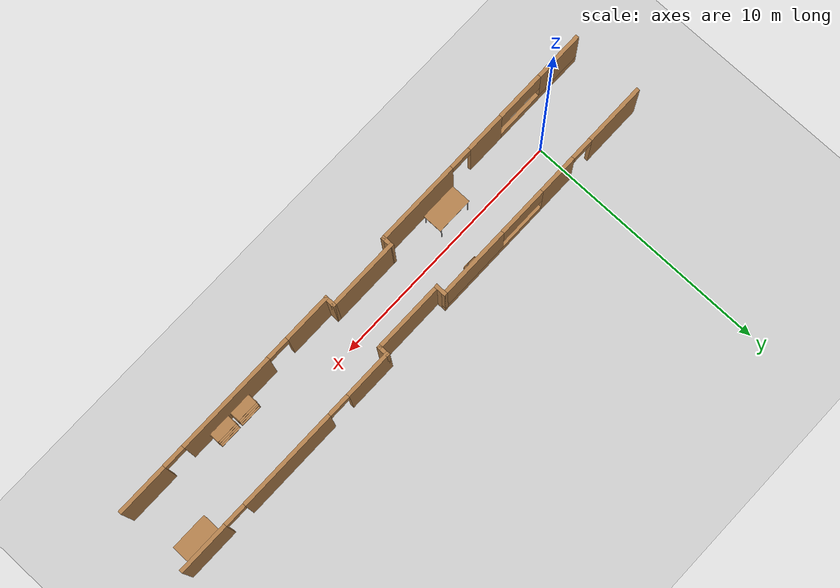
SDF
<sdf version="1.6">
 <world name="default">
  <light name="sun" type="directional">
   <pose>0 0 10 0 -0 0</pose>
   <diffuse>0.8 0.8 0.8 1</diffuse>
   <specular>0.2 0.2 0.2 1</specular>
   <attenuation>
    <range>1000</range>
    <constant>0.9</constant>
    <linear>0.01</linear>
    <quadratic>0.001</quadratic>
   </attenuation>
   <direction>-0.5 0.1 -0.9</direction>
  </light>
  <model name="ground_plane">
   <static>1</static>
   <link name="link">
    <collision name="collision">
     <geometry><plane><normal>0 0 1</normal><size>100 100</size></plane></geometry>
     <surface>
      <contact><collide_bitmask>65535</collide_bitmask></contact>
      <friction><ode><mu>100</mu><mu2>50</mu2></ode></friction>
     </surface>
    </collision>
    <visual name="visual">
     <cast_shadows>0</cast_shadows>
     <geometry><plane><normal>0 0 1</normal><size>100 100</size></plane></geometry>
     <material>
      <script><uri>file://media/materials/scripts/gazebo.material</uri><name>Gazebo/Grey</name></script>
     </material>
    </visual>
   </link>
  </model>
  <gravity>0 0 -9.8</gravity>
  <magnetic_field>6e-06 2.3e-05 -4.2e-05</magnetic_field>
  <atmosphere type="adiabatic"/>
  <physics name="default_physics" default="0" type="ode">
   <max_step_size>0.001</max_step_size>
   <real_time_factor>1</real_time_factor>
   <real_time_update_rate>1000</real_time_update_rate>
  </physics>
  <scene><ambient>0.4 0.4 0.4 1</ambient><background>0.7 0.7 0.7 1</background><shadows>1</shadows></scene>
  <spherical_coordinates>
   <surface_model>EARTH_WGS84</surface_model>
   <latitude_deg>0</latitude_deg>
   <longitude_deg>0</longitude_deg>
   <elevation>0</elevation>
   <heading_deg>0</heading_deg>
  </spherical_coordinates>
  <model name="Corridor_features">
   <pose>8 0 0 0 -0 0</pose>
   <link name="Wall_40">
    <pose>-6.35 1.425 0 0 -0 0</pose>
    <visual name="Wall_40_Visual_0">
     <pose>-3.75 0 1.25 0 -0 0</pose>
     <geometry><box><size>2.49999 0.15 2.5</size></box></geometry>
     <material>
      <script><uri>file://media/materials/scripts/gazebo.material</uri><name>Gazebo/Wood</name></script>
      <ambient>1 1 1 1</ambient>
     </material>
     <meta><layer>0</layer></meta>
    </visual>
    <collision name="Wall_40_Collision_0">
     <geometry><box><size>2.49999 0.15 2.5</size></box></geometry>
     <pose>-3.75 0 1.25 0 -0 0</pose>
    </collision>
    <visual name="Wall_40_Visual_1">
     <pose>-0.800007 0 1.25 0 -0 0</pose>
     <geometry><box><size>1.6 0.15 2.5</size></box></geometry>
     <material>
      <script><uri>file://media/materials/scripts/gazebo.material</uri><name>Gazebo/Wood</name></script>
      <ambient>1 1 1 1</ambient>
     </material>
     <meta><layer>0</layer></meta>
    </visual>
    <collision name="Wall_40_Collision_1">
     <geometry><box><size>1.6 0.15 2.5</size></box></geometry>
     <pose>-0.800007 0 1.25 0 -0 0</pose>
    </collision>
    <visual name="Wall_40_Visual_2">
     <pose>2.5 0 0.25 0 -0 0</pose>
     <geometry><box><size>5.00001 0.15 0.5</size></box></geometry>
     <material>
      <script><uri>file://media/materials/scripts/gazebo.material</uri><name>Gazebo/Wood</name></script>
      <ambient>1 1 1 1</ambient>
     </material>
     <meta><layer>0</layer></meta>
    </visual>
    <collision name="Wall_40_Collision_2">
     <geometry><box><size>5.00001 0.15 0.5</size></box></geometry>
     <pose>2.5 0 0.25 0 -0 0</pose>
    </collision>
    <visual name="Wall_40_Visual_3">
     <pose>3.5 0 1.5 0 -0 0</pose>
     <geometry><box><size>3.00001 0.15 2</size></box></geometry>
     <material>
      <script><uri>file://media/materials/scripts/gazebo.material</uri><name>Gazebo/Wood</name></script>
      <ambient>1 1 1 1</ambient>
     </material>
     <meta><layer>0</layer></meta>
    </visual>
    <collision name="Wall_40_Collision_3">
     <geometry><box><size>3.00001 0.15 2</size></box></geometry>
     <pose>3.5 0 1.5 0 -0 0</pose>
    </collision>
    <visual name="Wall_40_Visual_4">
     <pose>0.999993 0 1.9 0 -0 0</pose>
     <geometry><box><size>2 0.15 1.2</size></box></geometry>
     <material>
      <script><uri>file://media/materials/scripts/gazebo.material</uri><name>Gazebo/Wood</name></script>
      <ambient>1 1 1 1</ambient>
     </material>
     <meta><layer>0</layer></meta>
    </visual>
    <collision name="Wall_40_Collision_4">
     <geometry><box><size>2 0.15 1.2</size></box></geometry>
     <pose>0.999993 0 1.9 0 -0 0</pose>
    </collision>
    <visual name="Wall_40_Visual_5">
     <pose>-2.05001 0 2.25 0 -0 0</pose>
     <geometry><box><size>0.9 0.15 0.5</size></box></geometry>
     <material>
      <script><uri>file://media/materials/scripts/gazebo.material</uri><name>Gazebo/Wood</name></script>
      <ambient>1 1 1 1</ambient>
     </material>
     <meta><layer>0</layer></meta>
    </visual>
    <collision name="Wall_40_Collision_5">
     <geometry><box><size>0.9 0.15 0.5</size></box></geometry>
     <pose>-2.05001 0 2.25 0 -0 0</pose>
    </collision>
   </link>
   <link name="Wall_42">
    <pose>-6.35 -1.425 0 0 -0 3.14159</pose>
    <visual name="Wall_42_Visual_0">
     <pose>-3.25 0 1.25 0 -0 0</pose>
     <geometry><box><size>3.50001 0.15 2.5</size></box></geometry>
     <material>
      <script><uri>file://media/materials/scripts/gazebo.material</uri><name>Gazebo/Wood</name></script>
      <ambient>1 1 1 1</ambient>
     </material>
     <meta><layer>0</layer></meta>
    </visual>
    <collision name="Wall_42_Collision_0">
     <geometry><box><size>3.50001 0.15 2.5</size></box></geometry>
     <pose>-3.25 0 1.25 0 -0 0</pose>
    </collision>
    <visual name="Wall_42_Visual_1">
     <pose>0.200007 0 1.25 0 -0 0</pose>
     <geometry><box><size>1.6 0.15 2.5</size></box></geometry>
     <material>
      <script><uri>file://media/materials/scripts/gazebo.material</uri><name>Gazebo/Wood</name></script>
      <ambient>1 1 1 1</ambient>
     </material>
     <meta><layer>0</layer></meta>
    </visual>
    <collision name="Wall_42_Collision_1">
     <geometry><box><size>1.6 0.15 2.5</size></box></geometry>
     <pose>0.200007 0 1.25 0 -0 0</pose>
    </collision>
    <visual name="Wall_42_Visual_2">
     <pose>3 0 0.25 0 -0 0</pose>
     <geometry><box><size>3.99999 0.15 0.5</size></box></geometry>
     <material>
      <script><uri>file://media/materials/scripts/gazebo.material</uri><name>Gazebo/Wood</name></script>
      <ambient>1 1 1 1</ambient>
     </material>
     <meta><layer>0</layer></meta>
    </visual>
    <collision name="Wall_42_Collision_2">
     <geometry><box><size>3.99999 0.15 0.5</size></box></geometry>
     <pose>3 0 0.25 0 -0 0</pose>
    </collision>
    <visual name="Wall_42_Visual_3">
     <pose>4 0 1.5 0 -0 0</pose>
     <geometry><box><size>1.99999 0.15 2</size></box></geometry>
     <material>
      <script><uri>file://media/materials/scripts/gazebo.material</uri><name>Gazebo/Wood</name></script>
      <ambient>1 1 1 1</ambient>
     </material>
     <meta><layer>0</layer></meta>
    </visual>
    <collision name="Wall_42_Collision_3">
     <geometry><box><size>1.99999 0.15 2</size></box></geometry>
     <pose>4 0 1.5 0 -0 0</pose>
    </collision>
    <visual name="Wall_42_Visual_4">
     <pose>2.00001 0 1.9 0 -0 0</pose>
     <geometry><box><size>2 0.15 1.2</size></box></geometry>
     <material>
      <script><uri>file://media/materials/scripts/gazebo.material</uri><name>Gazebo/Wood</name></script>
      <ambient>1 1 1 1</ambient>
     </material>
     <meta><layer>0</layer></meta>
    </visual>
    <collision name="Wall_42_Collision_4">
     <geometry><box><size>2 0.15 1.2</size></box></geometry>
     <pose>2.00001 0 1.9 0 -0 0</pose>
    </collision>
    <visual name="Wall_42_Visual_5">
     <pose>-1.04999 0 2.25 0 -0 0</pose>
     <geometry><box><size>0.9 0.15 0.5</size></box></geometry>
     <material>
      <script><uri>file://media/materials/scripts/gazebo.material</uri><name>Gazebo/Wood</name></script>
      <ambient>1 1 1 1</ambient>
     </material>
     <meta><layer>0</layer></meta>
    </visual>
    <collision name="Wall_42_Collision_5">
     <geometry><box><size>0.9 0.15 0.5</size></box></geometry>
     <pose>-1.04999 0 2.25 0 -0 0</pose>
    </collision>
   </link>
   <link name="Wall_44">
    <collision name="Wall_44_Collision">
     <geometry><box><size>0.5 0.15 2.5</size></box></geometry>
     <pose>0 0 1.25 0 -0 0</pose>
    </collision>
    <visual name="Wall_44_Visual">
     <pose>0 0 1.25 0 -0 0</pose>
     <geometry><box><size>0.5 0.15 2.5</size></box></geometry>
     <material>
      <script><uri>file://media/materials/scripts/gazebo.material</uri><name>Gazebo/Wood</name></script>
      <ambient>1 1 1 1</ambient>
     </material>
     <meta><layer>0</layer></meta>
    </visual>
    <pose>-1.425 1.25 0 0 -0 -1.5708</pose>
   </link>
   <link name="Wall_45">
    <collision name="Wall_45_Collision">
     <geometry><box><size>3 0.15 2.5</size></box></geometry>
     <pose>0 0 1.25 0 -0 0</pose>
    </collision>
    <visual name="Wall_45_Visual">
     <pose>0 0 1.25 0 -0 0</pose>
     <geometry><box><size>3 0.15 2.5</size></box></geometry>
     <material>
      <script><uri>file://media/materials/scripts/gazebo.material</uri><name>Gazebo/Wood</name></script>
      <ambient>1 1 1 1</ambient>
     </material>
     <meta><layer>0</layer></meta>
    </visual>
    <pose>0 1.075 0 0 -0 0</pose>
   </link>
   <link name="Wall_46">
    <collision name="Wall_46_Collision">
     <geometry><box><size>0.5 0.15 2.5</size></box></geometry>
     <pose>0 0 1.25 0 -0 0</pose>
    </collision>
    <visual name="Wall_46_Visual">
     <pose>0 0 1.25 0 -0 0</pose>
     <geometry><box><size>0.5 0.15 2.5</size></box></geometry>
     <material>
      <script><uri>file://media/materials/scripts/gazebo.material</uri><name>Gazebo/Wood</name></script>
      <ambient>1 1 1 1</ambient>
     </material>
     <meta><layer>0</layer></meta>
    </visual>
    <pose>1.425 1.25 0 0 -0 1.5708</pose>
   </link>
   <link name="Wall_47">
    <pose>6.35 1.425 0 0 -0 0</pose>
    <visual name="Wall_47_Visual_0">
     <pose>-4 0 1.25 0 -0 0</pose>
     <geometry><box><size>1.99999 0.15 2.5</size></box></geometry>
     <material>
      <script><uri>file://media/materials/scripts/gazebo.material</uri><name>Gazebo/Wood</name></script>
      <ambient>1 1 1 1</ambient>
     </material>
     <meta><layer>0</layer></meta>
    </visual>
    <collision name="Wall_47_Collision_0">
     <geometry><box><size>1.99999 0.15 2.5</size></box></geometry>
     <pose>-4 0 1.25 0 -0 0</pose>
    </collision>
    <visual name="Wall_47_Visual_1">
     <pose>-0.050007 0 1.25 0 -0 0</pose>
     <geometry><box><size>4.1 0.15 2.5</size></box></geometry>
     <material>
      <script><uri>file://media/materials/scripts/gazebo.material</uri><name>Gazebo/Wood</name></script>
      <ambient>1 1 1 1</ambient>
     </material>
     <meta><layer>0</layer></meta>
    </visual>
    <collision name="Wall_47_Collision_1">
     <geometry><box><size>4.1 0.15 2.5</size></box></geometry>
     <pose>-0.050007 0 1.25 0 -0 0</pose>
    </collision>
    <visual name="Wall_47_Visual_2">
     <pose>3.95 0 1.25 0 -0 0</pose>
     <geometry><box><size>2.10001 0.15 2.5</size></box></geometry>
     <material>
      <script><uri>file://media/materials/scripts/gazebo.material</uri><name>Gazebo/Wood</name></script>
      <ambient>1 1 1 1</ambient>
     </material>
     <meta><layer>0</layer></meta>
    </visual>
    <collision name="Wall_47_Collision_2">
     <geometry><box><size>2.10001 0.15 2.5</size></box></geometry>
     <pose>3.95 0 1.25 0 -0 0</pose>
    </collision>
    <visual name="Wall_47_Visual_3">
     <pose>-2.55001 0 2.25 0 -0 0</pose>
     <geometry><box><size>0.9 0.15 0.5</size></box></geometry>
     <material>
      <script><uri>file://media/materials/scripts/gazebo.material</uri><name>Gazebo/Wood</name></script>
      <ambient>1 1 1 1</ambient>
     </material>
     <meta><layer>0</layer></meta>
    </visual>
    <collision name="Wall_47_Collision_3">
     <geometry><box><size>0.9 0.15 0.5</size></box></geometry>
     <pose>-2.55001 0 2.25 0 -0 0</pose>
    </collision>
    <visual name="Wall_47_Visual_4">
     <pose>2.44999 0 2.25 0 -0 0</pose>
     <geometry><box><size>0.9 0.15 0.5</size></box></geometry>
     <material>
      <script><uri>file://media/materials/scripts/gazebo.material</uri><name>Gazebo/Wood</name></script>
      <ambient>1 1 1 1</ambient>
     </material>
     <meta><layer>0</layer></meta>
    </visual>
    <collision name="Wall_47_Collision_4">
     <geometry><box><size>0.9 0.15 0.5</size></box></geometry>
     <pose>2.44999 0 2.25 0 -0 0</pose>
    </collision>
   </link>
   <link name="Wall_49">
    <collision name="Wall_49_Collision">
     <geometry><box><size>0.5 0.15 2.5</size></box></geometry>
     <pose>0 0 1.25 0 -0 0</pose>
    </collision>
    <visual name="Wall_49_Visual">
     <pose>0 0 1.25 0 -0 0</pose>
     <geometry><box><size>0.5 0.15 2.5</size></box></geometry>
     <material>
      <script><uri>file://media/materials/scripts/gazebo.material</uri><name>Gazebo/Wood</name></script>
      <ambient>1 1 1 1</ambient>
     </material>
     <meta><layer>0</layer></meta>
    </visual>
    <pose>-1.425 -1.25 0 0 -0 1.5708</pose>
   </link>
   <link name="Wall_50">
    <collision name="Wall_50_Collision">
     <geometry><box><size>3 0.15 2.5</size></box></geometry>
     <pose>0 0 1.25 0 -0 0</pose>
    </collision>
    <visual name="Wall_50_Visual">
     <pose>0 0 1.25 0 -0 0</pose>
     <geometry><box><size>3 0.15 2.5</size></box></geometry>
     <material>
      <script><uri>file://media/materials/scripts/gazebo.material</uri><name>Gazebo/Wood</name></script>
      <ambient>1 1 1 1</ambient>
     </material>
     <meta><layer>0</layer></meta>
    </visual>
    <pose>0 -1.075 0 0 -0 0</pose>
   </link>
   <link name="Wall_51">
    <collision name="Wall_51_Collision">
     <geometry><box><size>0.5 0.15 2.5</size></box></geometry>
     <pose>0 0 1.25 0 -0 0</pose>
    </collision>
    <visual name="Wall_51_Visual">
     <pose>0 0 1.25 0 -0 0</pose>
     <geometry><box><size>0.5 0.15 2.5</size></box></geometry>
     <material>
      <script><uri>file://media/materials/scripts/gazebo.material</uri><name>Gazebo/Wood</name></script>
      <ambient>1 1 1 1</ambient>
     </material>
     <meta><layer>0</layer></meta>
    </visual>
    <pose>1.425 -1.25 0 0 -0 -1.5708</pose>
   </link>
   <link name="Wall_52">
    <pose>6.35 -1.425 0 0 -0 0</pose>
    <visual name="Wall_52_Visual_0">
     <pose>-4 0 1.25 0 -0 0</pose>
     <geometry><box><size>1.99999 0.15 2.5</size></box></geometry>
     <material>
      <script><uri>file://media/materials/scripts/gazebo.material</uri><name>Gazebo/Wood</name></script>
      <ambient>1 1 1 1</ambient>
     </material>
     <meta><layer>0</layer></meta>
    </visual>
    <collision name="Wall_52_Collision_0">
     <geometry><box><size>1.99999 0.15 2.5</size></box></geometry>
     <pose>-4 0 1.25 0 -0 0</pose>
    </collision>
    <visual name="Wall_52_Visual_1">
     <pose>-0.050007 0 1.25 0 -0 0</pose>
     <geometry><box><size>4.1 0.15 2.5</size></box></geometry>
     <material>
      <script><uri>file://media/materials/scripts/gazebo.material</uri><name>Gazebo/Wood</name></script>
      <ambient>1 1 1 1</ambient>
     </material>
     <meta><layer>0</layer></meta>
    </visual>
    <collision name="Wall_52_Collision_1">
     <geometry><box><size>4.1 0.15 2.5</size></box></geometry>
     <pose>-0.050007 0 1.25 0 -0 0</pose>
    </collision>
    <visual name="Wall_52_Visual_2">
     <pose>3.95 0 1.25 0 -0 0</pose>
     <geometry><box><size>2.10001 0.15 2.5</size></box></geometry>
     <material>
      <script><uri>file://media/materials/scripts/gazebo.material</uri><name>Gazebo/Wood</name></script>
      <ambient>1 1 1 1</ambient>
     </material>
     <meta><layer>0</layer></meta>
    </visual>
    <collision name="Wall_52_Collision_2">
     <geometry><box><size>2.10001 0.15 2.5</size></box></geometry>
     <pose>3.95 0 1.25 0 -0 0</pose>
    </collision>
    <visual name="Wall_52_Visual_3">
     <pose>-2.55001 0 2.25 0 -0 0</pose>
     <geometry><box><size>0.9 0.15 0.5</size></box></geometry>
     <material>
      <script><uri>file://media/materials/scripts/gazebo.material</uri><name>Gazebo/Wood</name></script>
      <ambient>1 1 1 1</ambient>
     </material>
     <meta><layer>0</layer></meta>
    </visual>
    <collision name="Wall_52_Collision_3">
     <geometry><box><size>0.9 0.15 0.5</size></box></geometry>
     <pose>-2.55001 0 2.25 0 -0 0</pose>
    </collision>
    <visual name="Wall_52_Visual_4">
     <pose>2.44999 0 2.25 0 -0 0</pose>
     <geometry><box><size>0.9 0.15 0.5</size></box></geometry>
     <material>
      <script><uri>file://media/materials/scripts/gazebo.material</uri><name>Gazebo/Wood</name></script>
      <ambient>1 1 1 1</ambient>
     </material>
     <meta><layer>0</layer></meta>
    </visual>
    <collision name="Wall_52_Collision_4">
     <geometry><box><size>0.9 0.15 0.5</size></box></geometry>
     <pose>2.44999 0 2.25 0 -0 0</pose>
    </collision>
   </link>
   <static>1</static>
  </model>
  <model name="bookshelf">
   <static>1</static>
   <link name="link">
    <inertial><mass>1</mass></inertial>
    <collision name="back">
     <pose>0 0.005 0.6 0 -0 0</pose>
     <geometry><box><size>0.9 0.01 1.2</size></box></geometry>
    </collision>
    <visual name="visual1">
     <pose>0 0.005 0.6 0 -0 0</pose>
     <geometry><box><size>0.9 0.01 1.2</size></box></geometry>
     <material>
      <script><uri>file://media/materials/scripts/gazebo.material</uri><name>Gazebo/Wood</name></script>
     </material>
    </visual>
    <collision name="left_side">
     <pose>0.45 -0.195 0.6 0 -0 0</pose>
     <geometry><box><size>0.02 0.4 1.2</size></box></geometry>
    </collision>
    <visual name="visual2">
     <pose>0.45 -0.195 0.6 0 -0 0</pose>
     <geometry><box><size>0.02 0.4 1.2</size></box></geometry>
     <material>
      <script><uri>file://media/materials/scripts/gazebo.material</uri><name>Gazebo/Wood</name></script>
     </material>
    </visual>
    <collision name="right_side">
     <pose>-0.45 -0.195 0.6 0 -0 0</pose>
     <geometry><box><size>0.02 0.4 1.2</size></box></geometry>
    </collision>
    <visual name="visual3">
     <pose>-0.45 -0.195 0.6 0 -0 0</pose>
     <geometry><box><size>0.02 0.4 1.2</size></box></geometry>
     <material>
      <script><uri>file://media/materials/scripts/gazebo.material</uri><name>Gazebo/Wood</name></script>
     </material>
    </visual>
    <collision name="bottom">
     <pose>0 -0.195 0.03 0 -0 0</pose>
     <geometry><box><size>0.88 0.4 0.06</size></box></geometry>
    </collision>
    <visual name="visual4">
     <pose>0 -0.195 0.03 0 -0 0</pose>
     <geometry><box><size>0.88 0.4 0.06</size></box></geometry>
     <material>
      <script><uri>file://media/materials/scripts/gazebo.material</uri><name>Gazebo/Wood</name></script>
     </material>
    </visual>
    <collision name="top">
     <pose>0 -0.195 1.19 0 -0 0</pose>
     <geometry><box><size>0.88 0.4 0.02</size></box></geometry>
    </collision>
    <visual name="visual5">
     <pose>0 -0.195 1.19 0 -0 0</pose>
     <geometry><box><size>0.88 0.4 0.02</size></box></geometry>
     <material>
      <script><uri>file://media/materials/scripts/gazebo.material</uri><name>Gazebo/Wood</name></script>
     </material>
    </visual>
    <collision name="low_shelf">
     <pose>0 -0.195 0.43 0 -0 0</pose>
     <geometry><box><size>0.88 0.4 0.02</size></box></geometry>
    </collision>
    <visual name="visual6">
     <pose>0 -0.195 0.43 0 -0 0</pose>
     <geometry><box><size>0.88 0.4 0.02</size></box></geometry>
     <material>
      <script><uri>file://media/materials/scripts/gazebo.material</uri><name>Gazebo/Wood</name></script>
     </material>
    </visual>
    <collision name="high_shelf">
     <pose>0 -0.195 0.8 0 -0 0</pose>
     <geometry><box><size>0.88 0.4 0.02</size></box></geometry>
    </collision>
    <visual name="visual7">
     <pose>0 -0.195 0.8 0 -0 0</pose>
     <geometry><box><size>0.88 0.4 0.02</size></box></geometry>
     <material>
      <script><uri>file://media/materials/scripts/gazebo.material</uri><name>Gazebo/Wood</name></script>
     </material>
    </visual>
   </link>
   <pose>15 -1.3 0 0 -0 3.14159</pose>
  </model>
  <model name="bookshelf_0">
   <static>1</static>
   <link name="link">
    <inertial><mass>1</mass></inertial>
    <collision name="back">
     <pose>0 0.005 0.6 0 -0 0</pose>
     <geometry><box><size>0.9 0.01 1.2</size></box></geometry>
    </collision>
    <visual name="visual1">
     <pose>0 0.005 0.6 0 -0 0</pose>
     <geometry><box><size>0.9 0.01 1.2</size></box></geometry>
     <material>
      <script><uri>file://media/materials/scripts/gazebo.material</uri><name>Gazebo/Wood</name></script>
     </material>
    </visual>
    <collision name="left_side">
     <pose>0.45 -0.195 0.6 0 -0 0</pose>
     <geometry><box><size>0.02 0.4 1.2</size></box></geometry>
    </collision>
    <visual name="visual2">
     <pose>0.45 -0.195 0.6 0 -0 0</pose>
     <geometry><box><size>0.02 0.4 1.2</size></box></geometry>
     <material>
      <script><uri>file://media/materials/scripts/gazebo.material</uri><name>Gazebo/Wood</name></script>
     </material>
    </visual>
    <collision name="right_side">
     <pose>-0.45 -0.195 0.6 0 -0 0</pose>
     <geometry><box><size>0.02 0.4 1.2</size></box></geometry>
    </collision>
    <visual name="visual3">
     <pose>-0.45 -0.195 0.6 0 -0 0</pose>
     <geometry><box><size>0.02 0.4 1.2</size></box></geometry>
     <material>
      <script><uri>file://media/materials/scripts/gazebo.material</uri><name>Gazebo/Wood</name></script>
     </material>
    </visual>
    <collision name="bottom">
     <pose>0 -0.195 0.03 0 -0 0</pose>
     <geometry><box><size>0.88 0.4 0.06</size></box></geometry>
    </collision>
    <visual name="visual4">
     <pose>0 -0.195 0.03 0 -0 0</pose>
     <geometry><box><size>0.88 0.4 0.06</size></box></geometry>
     <material>
      <script><uri>file://media/materials/scripts/gazebo.material</uri><name>Gazebo/Wood</name></script>
     </material>
    </visual>
    <collision name="top">
     <pose>0 -0.195 1.19 0 -0 0</pose>
     <geometry><box><size>0.88 0.4 0.02</size></box></geometry>
    </collision>
    <visual name="visual5">
     <pose>0 -0.195 1.19 0 -0 0</pose>
     <geometry><box><size>0.88 0.4 0.02</size></box></geometry>
     <material>
      <script><uri>file://media/materials/scripts/gazebo.material</uri><name>Gazebo/Wood</name></script>
     </material>
    </visual>
    <collision name="low_shelf">
     <pose>0 -0.195 0.43 0 -0 0</pose>
     <geometry><box><size>0.88 0.4 0.02</size></box></geometry>
    </collision>
    <visual name="visual6">
     <pose>0 -0.195 0.43 0 -0 0</pose>
     <geometry><box><size>0.88 0.4 0.02</size></box></geometry>
     <material>
      <script><uri>file://media/materials/scripts/gazebo.material</uri><name>Gazebo/Wood</name></script>
     </material>
    </visual>
    <collision name="high_shelf">
     <pose>0 -0.195 0.8 0 -0 0</pose>
     <geometry><box><size>0.88 0.4 0.02</size></box></geometry>
    </collision>
    <visual name="visual7">
     <pose>0 -0.195 0.8 0 -0 0</pose>
     <geometry><box><size>0.88 0.4 0.02</size></box></geometry>
     <material>
      <script><uri>file://media/materials/scripts/gazebo.material</uri><name>Gazebo/Wood</name></script>
     </material>
    </visual>
   </link>
   <pose>14 -1.3 0 0 -0 3.14159</pose>
  </model>
  <model name="table">
   <static>1</static>
   <link name="link">
    <collision name="surface">
     <pose>0 0 1 0 -0 0</pose>
     <geometry><box><size>1.5 0.8 0.03</size></box></geometry>
     <surface><friction><ode><mu>0.6</mu><mu2>0.6</mu2></ode></friction></surface>
    </collision>
    <visual name="visual1">
     <pose>0 0 1 0 -0 0</pose>
     <geometry><box><size>1.5 0.8 0.03</size></box></geometry>
     <material>
      <script><uri>file://media/materials/scripts/gazebo.material</uri><name>Gazebo/Wood</name></script>
     </material>
    </visual>
    <collision name="front_left_leg">
     <pose>0.68 0.38 0.5 0 -0 0</pose>
     <geometry><cylinder><radius>0.02</radius><length>1</length></cylinder></geometry>
    </collision>
    <visual name="front_left_leg">
     <pose>0.68 0.38 0.5 0 -0 0</pose>
     <geometry><cylinder><radius>0.02</radius><length>1</length></cylinder></geometry>
     <material>
      <script><uri>file://media/materials/scripts/gazebo.material</uri><name>Gazebo/Grey</name></script>
     </material>
    </visual>
    <collision name="front_right_leg">
     <pose>0.68 -0.38 0.5 0 -0 0</pose>
     <geometry><cylinder><radius>0.02</radius><length>1</length></cylinder></geometry>
    </collision>
    <visual name="front_right_leg">
     <pose>0.68 -0.38 0.5 0 -0 0</pose>
     <geometry><cylinder><radius>0.02</radius><length>1</length></cylinder></geometry>
     <material>
      <script><uri>file://media/materials/scripts/gazebo.material</uri><name>Gazebo/Grey</name></script>
     </material>
    </visual>
    <collision name="back_right_leg">
     <pose>-0.68 -0.38 0.5 0 -0 0</pose>
     <geometry><cylinder><radius>0.02</radius><length>1</length></cylinder></geometry>
    </collision>
    <visual name="back_right_leg">
     <pose>-0.68 -0.38 0.5 0 -0 0</pose>
     <geometry><cylinder><radius>0.02</radius><length>1</length></cylinder></geometry>
     <material>
      <script><uri>file://media/materials/scripts/gazebo.material</uri><name>Gazebo/Grey</name></script>
     </material>
    </visual>
    <collision name="back_left_leg">
     <pose>-0.68 0.38 0.5 0 -0 0</pose>
     <geometry><cylinder><radius>0.02</radius><length>1</length></cylinder></geometry>
    </collision>
    <visual name="back_left_leg">
     <pose>-0.68 0.38 0.5 0 -0 0</pose>
     <geometry><cylinder><radius>0.02</radius><length>1</length></cylinder></geometry>
     <material>
      <script><uri>file://media/materials/scripts/gazebo.material</uri><name>Gazebo/Grey</name></script>
     </material>
    </visual>
   </link>
   <pose>4.07634 -0.816307 0 0 -0 0</pose>
  </model>
  <model name="table_0">
   <static>1</static>
   <link name="link">
    <collision name="surface">
     <pose>0 0 1 0 -0 0</pose>
     <geometry><box><size>1.5 0.8 0.03</size></box></geometry>
     <surface><friction><ode><mu>0.6</mu><mu2>0.6</mu2></ode></friction></surface>
    </collision>
    <visual name="visual1">
     <pose>0 0 1 0 -0 0</pose>
     <geometry><box><size>1.5 0.8 0.03</size></box></geometry>
     <material>
      <script><uri>file://media/materials/scripts/gazebo.material</uri><name>Gazebo/Wood</name></script>
     </material>
    </visual>
    <collision name="front_left_leg">
     <pose>0.68 0.38 0.5 0 -0 0</pose>
     <geometry><cylinder><radius>0.02</radius><length>1</length></cylinder></geometry>
    </collision>
    <visual name="front_left_leg">
     <pose>0.68 0.38 0.5 0 -0 0</pose>
     <geometry><cylinder><radius>0.02</radius><length>1</length></cylinder></geometry>
     <material>
      <script><uri>file://media/materials/scripts/gazebo.material</uri><name>Gazebo/Grey</name></script>
     </material>
    </visual>
    <collision name="front_right_leg">
     <pose>0.68 -0.38 0.5 0 -0 0</pose>
     <geometry><cylinder><radius>0.02</radius><length>1</length></cylinder></geometry>
    </collision>
    <visual name="front_right_leg">
     <pose>0.68 -0.38 0.5 0 -0 0</pose>
     <geometry><cylinder><radius>0.02</radius><length>1</length></cylinder></geometry>
     <material>
      <script><uri>file://media/materials/scripts/gazebo.material</uri><name>Gazebo/Grey</name></script>
     </material>
    </visual>
    <collision name="back_right_leg">
     <pose>-0.68 -0.38 0.5 0 -0 0</pose>
     <geometry><cylinder><radius>0.02</radius><length>1</length></cylinder></geometry>
    </collision>
    <visual name="back_right_leg">
     <pose>-0.68 -0.38 0.5 0 -0 0</pose>
     <geometry><cylinder><radius>0.02</radius><length>1</length></cylinder></geometry>
     <material>
      <script><uri>file://media/materials/scripts/gazebo.material</uri><name>Gazebo/Grey</name></script>
     </material>
    </visual>
    <collision name="back_left_leg">
     <pose>-0.68 0.38 0.5 0 -0 0</pose>
     <geometry><cylinder><radius>0.02</radius><length>1</length></cylinder></geometry>
    </collision>
    <visual name="back_left_leg">
     <pose>-0.68 0.38 0.5 0 -0 0</pose>
     <geometry><cylinder><radius>0.02</radius><length>1</length></cylinder></geometry>
     <material>
      <script><uri>file://media/materials/scripts/gazebo.material</uri><name>Gazebo/Grey</name></script>
     </material>
    </visual>
   </link>
   <pose>18.294 0.8332 0 0 -0 0</pose>
  </model>
  <model name="wooden_case_metal_peg">
   <link name="wooden_case::base">
    <pose>0 0 0.024 0 -0 0</pose>
    <inertial>
     <pose>-0.022184 0 0.171592 0 -0 0</pose>
     <mass>3.96264</mass>
     <inertia>
      <ixx>0.213536</ixx>
      <ixy>0</ixy>
      <ixz>0.000779377</ixz>
      <iyy>0.0708943</iyy>
      <iyz>0</iyz>
      <izz>0.154604</izz>
     </inertia>
    </inertial>
    <collision name="collision_back">
     <pose>-0.053975 0 0.1778 0 -0 0</pose>
     <geometry><box><size>0.01905 0.5461 0.3175</size></box></geometry>
     <surface>
      <contact>
       <poissons_ratio>0.347</poissons_ratio>
       <elastic_modulus>8.8e+09</elastic_modulus>
       <ode><kp>100000</kp><kd>100</kd><max_vel>100</max_vel><min_depth>0.001</min_depth></ode>
      </contact>
      <friction>
       <torsional>
        <coefficient>1</coefficient>
        <use_patch_radius>0</use_patch_radius>
        <surface_radius>0.01</surface_radius>
       </torsional>
      </friction>
     </surface>
    </collision>
    <visual name="visual_back">
     <pose>-0.053975 0 0.1778 0 -0 0</pose>
     <geometry><box><size>0.01905 0.5461 0.3175</size></box></geometry>
     <material>
      <script><uri>file://media/materials/scripts/gazebo.material</uri><name>Gazebo/Wood</name></script>
     </material>
    </visual>
    <collision name="collision_bottom">
     <pose>0 0 0.009525 0 -0 0</pose>
     <geometry><box><size>0.127 0.5842 0.01905</size></box></geometry>
     <surface>
      <contact>
       <poissons_ratio>0.347</poissons_ratio>
       <elastic_modulus>8.8e+09</elastic_modulus>
       <ode><kp>100000</kp><kd>100</kd><max_vel>100</max_vel><min_depth>0.001</min_depth></ode>
      </contact>
      <friction>
       <torsional>
        <coefficient>1</coefficient>
        <use_patch_radius>0</use_patch_radius>
        <surface_radius>0.01</surface_radius>
       </torsional>
      </friction>
     </surface>
    </collision>
    <visual name="visual_bottom">
     <pose>0 0 0.009525 0 -0 0</pose>
     <geometry><box><size>0.127 0.5842 0.01905</size></box></geometry>
     <material>
      <script><uri>file://media/materials/scripts/gazebo.material</uri><name>Gazebo/Wood</name></script>
     </material>
    </visual>
    <collision name="collision_top">
     <pose>0 0 0.346075 0 -0 0</pose>
     <geometry><box><size>0.127 0.5842 0.01905</size></box></geometry>
     <surface>
      <contact>
       <poissons_ratio>0.347</poissons_ratio>
       <elastic_modulus>8.8e+09</elastic_modulus>
       <ode><kp>100000</kp><kd>100</kd><max_vel>100</max_vel><min_depth>0.001</min_depth></ode>
      </contact>
      <friction>
       <torsional>
        <coefficient>1</coefficient>
        <use_patch_radius>0</use_patch_radius>
        <surface_radius>0.01</surface_radius>
       </torsional>
      </friction>
     </surface>
    </collision>
    <visual name="visual_top">
     <pose>0 0 0.346075 0 -0 0</pose>
     <geometry><box><size>0.127 0.5842 0.01905</size></box></geometry>
     <material>
      <script><uri>file://media/materials/scripts/gazebo.material</uri><name>Gazebo/Wood</name></script>
     </material>
    </visual>
    <collision name="collision_left">
     <pose>0 -0.282575 0.1778 0 -0 0</pose>
     <geometry><box><size>0.127 0.01905 0.3175</size></box></geometry>
     <surface>
      <contact>
       <poissons_ratio>0.347</poissons_ratio>
       <elastic_modulus>8.8e+09</elastic_modulus>
       <ode><kp>100000</kp><kd>100</kd><max_vel>100</max_vel><min_depth>0.001</min_depth></ode>
      </contact>
      <friction>
       <torsional>
        <coefficient>1</coefficient>
        <use_patch_radius>0</use_patch_radius>
        <surface_radius>0.01</surface_radius>
       </torsional>
      </friction>
     </surface>
    </collision>
    <visual name="visual_left">
     <pose>0 -0.282575 0.1778 0 -0 0</pose>
     <geometry><box><size>0.127 0.01905 0.3175</size></box></geometry>
     <material>
      <script><uri>file://media/materials/scripts/gazebo.material</uri><name>Gazebo/Wood</name></script>
     </material>
    </visual>
    <collision name="collision_right">
     <pose>0 0.282575 0.1778 0 -0 0</pose>
     <geometry><box><size>0.127 0.01905 0.3175</size></box></geometry>
     <surface>
      <contact>
       <poissons_ratio>0.347</poissons_ratio>
       <elastic_modulus>8.8e+09</elastic_modulus>
       <ode><kp>100000</kp><kd>100</kd><max_vel>100</max_vel><min_depth>0.001</min_depth></ode>
      </contact>
      <friction>
       <torsional>
        <coefficient>1</coefficient>
        <use_patch_radius>0</use_patch_radius>
        <surface_radius>0.01</surface_radius>
       </torsional>
      </friction>
     </surface>
    </collision>
    <visual name="visual_right">
     <pose>0 0.282575 0.1778 0 -0 0</pose>
     <geometry><box><size>0.127 0.01905 0.3175</size></box></geometry>
     <material>
      <script><uri>file://media/materials/scripts/gazebo.material</uri><name>Gazebo/Wood</name></script>
     </material>
    </visual>
    <collision name="collision_block_left">
     <pose>0.0095 -0.2151 -0.012 0 -0 0</pose>
     <geometry><box><size>0.108 0.05 0.024</size></box></geometry>
     <surface>
      <contact>
       <poissons_ratio>0.347</poissons_ratio>
       <elastic_modulus>8.8e+09</elastic_modulus>
       <ode><kp>100000</kp><kd>100</kd><max_vel>100</max_vel><min_depth>0.001</min_depth></ode>
      </contact>
      <friction>
       <torsional>
        <coefficient>1</coefficient>
        <use_patch_radius>0</use_patch_radius>
        <surface_radius>0.01</surface_radius>
       </torsional>
      </friction>
     </surface>
    </collision>
    <visual name="visual_block_left">
     <pose>0.0095 -0.2151 -0.012 0 -0 0</pose>
     <geometry><box><size>0.108 0.05 0.024</size></box></geometry>
     <material>
      <script><uri>file://media/materials/scripts/gazebo.material</uri><name>Gazebo/Wood</name></script>
     </material>
    </visual>
    <collision name="collision_block_right">
     <pose>0.0095 0.2151 -0.012 0 -0 0</pose>
     <geometry><box><size>0.108 0.05 0.024</size></box></geometry>
     <surface>
      <contact>
       <poissons_ratio>0.347</poissons_ratio>
       <elastic_modulus>8.8e+09</elastic_modulus>
       <ode><kp>100000</kp><kd>100</kd><max_vel>100</max_vel><min_depth>0.001</min_depth></ode>
      </contact>
      <friction>
       <torsional>
        <coefficient>1</coefficient>
        <use_patch_radius>0</use_patch_radius>
        <surface_radius>0.01</surface_radius>
       </torsional>
      </friction>
     </surface>
    </collision>
    <visual name="visual_block_right">
     <pose>0.0095 0.2151 -0.012 0 -0 0</pose>
     <geometry><box><size>0.108 0.05 0.024</size></box></geometry>
     <material>
      <script><uri>file://media/materials/scripts/gazebo.material</uri><name>Gazebo/Wood</name></script>
     </material>
    </visual>
   </link>
   <link name="wooden_case::lid">
    <pose>0.243775 0 0.009525 0 -0 0</pose>
    <inertial>
     <mass>1.97874</mass>
     <inertia>
      <ixx>0.0563367</ixx>
      <ixy>0</ixy>
      <ixz>0</ixz>
      <iyy>0.020911</iyy>
      <iyz>0</iyz>
      <izz>0.0771281</izz>
     </inertia>
    </inertial>
    <collision name="collision">
     <geometry><box><size>0.3556 0.5842 0.01905</size></box></geometry>
     <surface>
      <contact>
       <poissons_ratio>0.347</poissons_ratio>
       <elastic_modulus>8.8e+09</elastic_modulus>
       <ode><kp>100000</kp><kd>100</kd><max_vel>100</max_vel><min_depth>0.001</min_depth></ode>
      </contact>
      <friction>
       <torsional>
        <coefficient>1</coefficient>
        <use_patch_radius>0</use_patch_radius>
        <surface_radius>0.01</surface_radius>
       </torsional>
      </friction>
     </surface>
    </collision>
    <visual name="visual">
     <geometry><box><size>0.3556 0.5842 0.01905</size></box></geometry>
     <material>
      <script><uri>file://media/materials/scripts/gazebo.material</uri><name>Gazebo/Wood</name></script>
     </material>
    </visual>
    <visual name="tee_nut_1">
     <pose>0.122 -0.216 0 0 -0 0</pose>
     <geometry><cylinder><radius>0.00635</radius><length>0.0192405</length></cylinder></geometry>
     <material>
      <script><uri>file://media/materials/scripts/gazebo.material</uri><name>Gazebo/Grey</name></script>
     </material>
    </visual>
    <visual name="tee_nut_2">
     <pose>0.122 -0.088 0 0 -0 0</pose>
     <geometry><cylinder><radius>0.00635</radius><length>0.0192405</length></cylinder></geometry>
     <material>
      <script><uri>file://media/materials/scripts/gazebo.material</uri><name>Gazebo/Grey</name></script>
     </material>
    </visual>
    <visual name="tee_nut_3">
     <pose>0.122 0.088 0 0 -0 0</pose>
     <geometry><cylinder><radius>0.00635</radius><length>0.0192405</length></cylinder></geometry>
     <material>
      <script><uri>file://media/materials/scripts/gazebo.material</uri><name>Gazebo/Grey</name></script>
     </material>
    </visual>
    <visual name="tee_nut_4">
     <pose>0.122 0.216 0 0 -0 0</pose>
     <geometry><cylinder><radius>0.00635</radius><length>0.0192405</length></cylinder></geometry>
     <material>
      <script><uri>file://media/materials/scripts/gazebo.material</uri><name>Gazebo/Grey</name></script>
     </material>
    </visual>
   </link>
   <joint name="wooden_case::lid_hinge" type="revolute">
    <pose>-0.1778 0 0.01905 0 -0 0</pose>
    <parent>wooden_case::base</parent>
    <child>wooden_case::lid</child>
    <axis>
     <xyz>0 1 0</xyz>
     <limit><upper>0.523599</upper><lower>-1.5708</lower></limit>
     <use_parent_model_frame>0</use_parent_model_frame>
     <dynamics><spring_reference>0</spring_reference><spring_stiffness>0</spring_stiffness></dynamics>
    </axis>
   </joint>
   <link name="peg::link">
    <pose>0.365774 0.216 0.05005 0 -0 0</pose>
    <inertial>
     <mass>0.0121</mass>
     <inertia>
      <ixx>3.90898e-06</ixx>
      <ixy>0</ixy>
      <ixz>0</ixz>
      <iyy>3.90898e-06</iyy>
      <iyz>0</iyz>
      <izz>6.58845e-08</izz>
     </inertia>
    </inertial>
    <collision name="collision">
     <geometry><cylinder><radius>0.0033</radius><length>0.062</length></cylinder></geometry>
     <surface>
      <contact>
       <poissons_ratio>0.305</poissons_ratio>
       <elastic_modulus>2e+11</elastic_modulus>
       <ode><kp>100000</kp><kd>100</kd><max_vel>100</max_vel><min_depth>0.001</min_depth></ode>
      </contact>
      <friction>
       <torsional>
        <coefficient>1</coefficient>
        <use_patch_radius>0</use_patch_radius>
        <surface_radius>0.01</surface_radius>
       </torsional>
      </friction>
     </surface>
    </collision>
    <visual name="visual">
     <geometry><cylinder><radius>0.0033</radius><length>0.062</length></cylinder></geometry>
     <material>
      <script><uri>file://media/materials/scripts/gazebo.material</uri><name>Gazebo/Grey</name></script>
     </material>
    </visual>
   </link>
   <joint name="case_peg" type="revolute">
    <child>peg::link</child>
    <parent>wooden_case::lid</parent>
    <axis>
     <xyz>0 0 1</xyz>
     <limit><upper>0</upper><lower>0</lower></limit>
     <use_parent_model_frame>0</use_parent_model_frame>
     <dynamics><spring_reference>0</spring_reference><spring_stiffness>0</spring_stiffness></dynamics>
    </axis>
   </joint>
   <pose>4.79999 1.30004 0.062458 0.024502 -1.57074 1.54555</pose>
  </model>
  <model name="frc2016_ball">
   <pose>4.91582 1.10094 0.143999 -0.049839 -0.004343 0.000302</pose>
   <link name="link">
    <inertial>
     <mass>0.213</mass>
     <inertia>
      <ixx>0.00322667</ixx>
      <ixy>0</ixy>
      <ixz>0</ixz>
      <iyy>0.00322667</iyy>
      <iyz>0</iyz>
      <izz>0.00322667</izz>
     </inertia>
    </inertial>
    <visual name="visual"><geometry><sphere><radius>0.127</radius></sphere></geometry></visual>
    <collision name="collision">
     <geometry><sphere><radius>0.127</radius></sphere></geometry>
     <surface>
      <bounce><restitution_coefficient>0.15937</restitution_coefficient><threshold>0</threshold></bounce>
      <contact><ode><max_vel>100</max_vel><min_depth>0.001</min_depth></ode></contact>
     </surface>
    </collision>
   </link>
  </model>
 </world>
</sdf>
